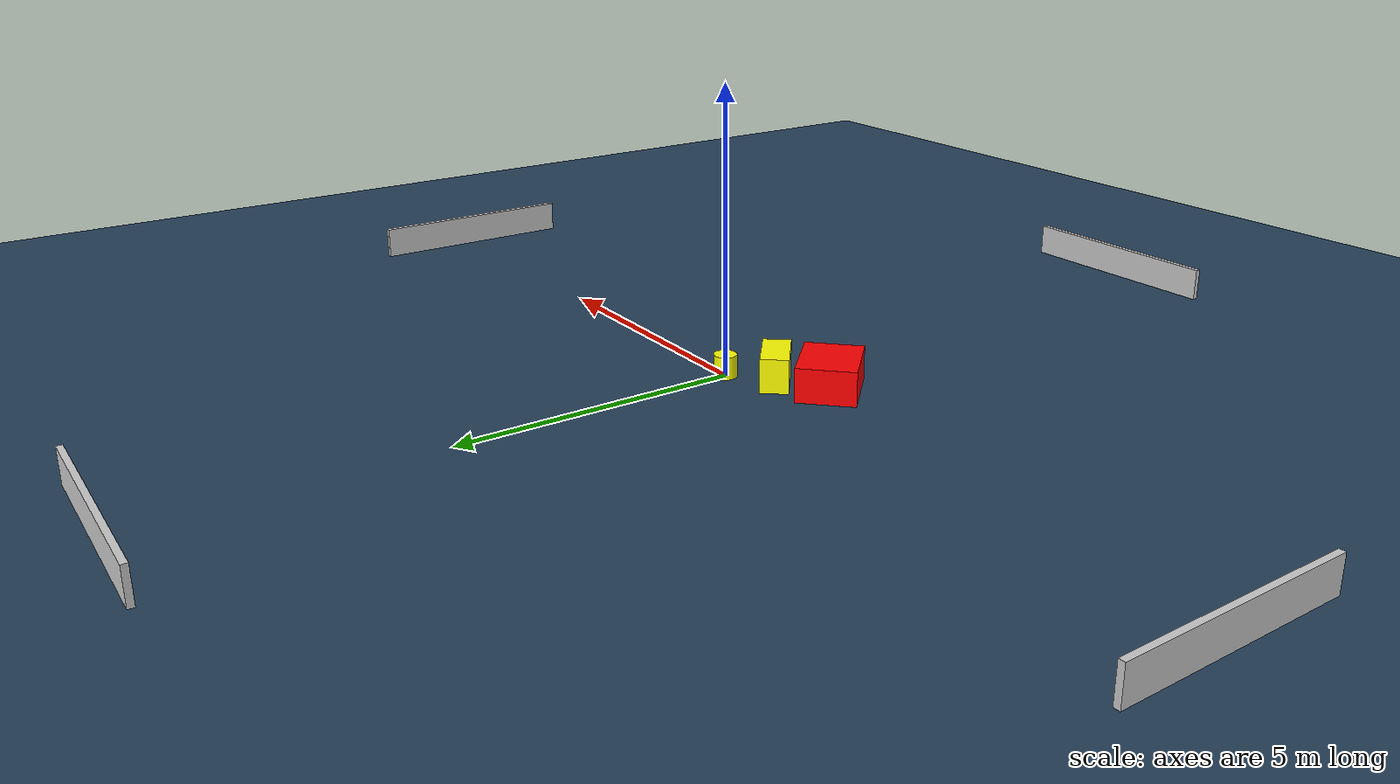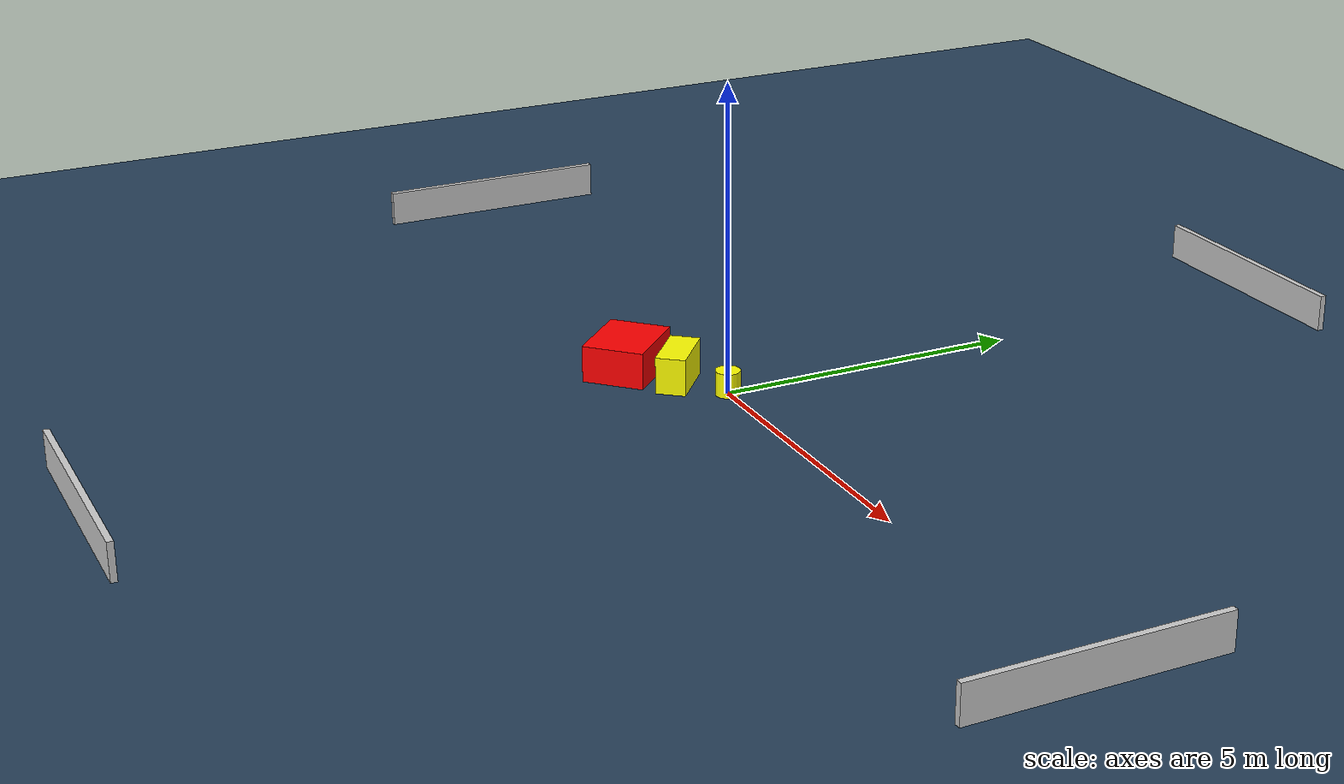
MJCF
<?xml version="1.0" ?>
<mujoco model="generated_environment">
  <option timestep="0.01" integrator="RK4" cone="elliptic"/>
  <default>
    <geom density="1"/>
  </default>
  <asset>
    <texture builtin="gradient" height="3072" name="skybox" rgb1="0.3 0.5 0.7" rgb2="0 0 0" type="skybox" width="512"/>
    <texture builtin="checker" height="300" name="groundplane" rgb1="0.2 0.3 0.4" rgb2="0.1 0.2 0.3" type="2d" width="300"/>
    <material name="groundplane" reflectance="0.2" texrepeat="5 5" texture="groundplane"/>
  </asset>
  <worldbody>
    <light dir="0 0 -1" directional="true" pos="0 0 1.5"/>
    <geom condim="3" friction="0.5 0.005 0.001" material="groundplane" name="floor" pos="0 0 0" size="0 0 0.05" type="plane"/>
    <body name="walls">
      <geom name="wall_1" condim="4" pos="-10.0 0.0 0.3" rgba="0.800000011920929 0.800000011920929 0.800000011920929 1.0" size="0.05 2.0 0.3" type="box"/>
      <geom name="wall_2" condim="4" pos="10.0 0.0 0.3" rgba="0.800000011920929 0.800000011920929 0.800000011920929 1.0" size="0.05 2.0 0.3" type="box"/>
      <geom name="wall_3" condim="4" pos="0.0 -10.0 0.3" rgba="0.800000011920929 0.800000011920929 0.800000011920929 1.0" size="2.0 0.05 0.3" type="box"/>
      <geom name="wall_4" condim="4" pos="0.0 10.0 0.3" rgba="0.800000011920929 0.800000011920929 0.800000011920929 1.0" size="2.0 0.05 0.3" type="box"/>
    </body>
    <body name="robot">
      <joint name="joint_x" type="slide" pos="0 0 0" axis="1 0 0"/>
      <joint name="joint_y" type="slide" pos="0 0 0" axis="0 1 0"/>
      <geom name="robot" type="cylinder" pos="0.0 0.0 0.2" size="0.2 0.2 0.0" mass="5.0" friction="1.0 0.005 0.0001" condim="4" rgba="1.0 1.0 0.0 1.0"/>
    </body>
    <body name="obstacle_1_movable">
      <geom name="obstacle_1_movable" condim="4" pos="-0.732087603313909 -0.5109641250179684 0.3" euler="0 0 50.461048837345295" friction="0.0 0.005 0.001" rgba="1.0 1.0 0.0 1.0" size="0.24261597636889443 0.48562993432563745 0.3" type="box" mass="0.1"/>
      <joint type="free"/>
    </body>
    <body name="obstacle_2_static">
      <geom name="obstacle_2_static" condim="4" pos="-1.5253720761106864 -1.0356197006367298 0.3" euler="0 0 224.24350763217896" friction="0.0 0.005 0.001" rgba="1.0 0.0 0.0 1.0" size="0.5080897448075403 0.6162297809158108 0.3" type="box"/>
    </body>
  </worldbody>
  <actuator>
    <motor name="actuator_x" joint="joint_x" gear="1" ctrlrange="-1 1"/>
    <motor name="actuator_y" joint="joint_y" gear="1" ctrlrange="-1 1"/>
  </actuator>
</mujoco>
